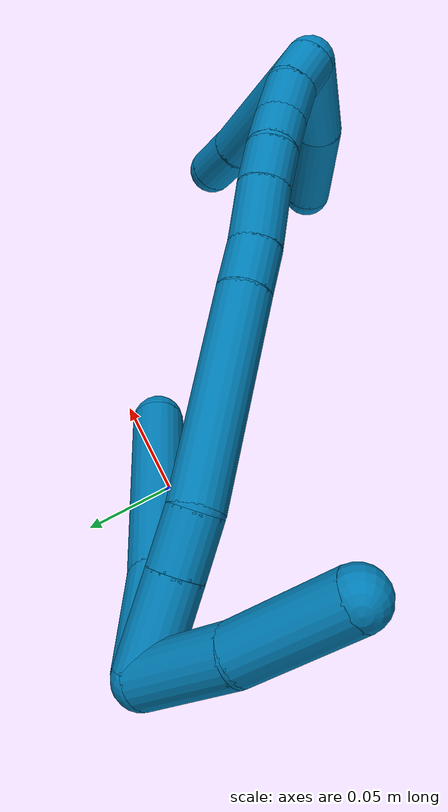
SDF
<sdf version="1.7">
 <world name="default">
  <model name="9">
   <static>0</static>
   <link name="9">
    <collision name="collision-cylinder-e_1_2_8">
     <pose>0.00841 -0.005478 -0.022238 2.90004 0.351927 1.94371</pose>
     <geometry><cylinder><radius>0.0125</radius><length>0.048796</length></cylinder></geometry>
     <surface>
      <friction><ode><mu>1.16</mu><mu2>1.16</mu2><slip1>0</slip1><slip2>0</slip2></ode></friction>
      <contact><ode><kp>1e+06</kp><kd>1</kd><max_vel>0</max_vel><min_depth>0.001</min_depth></ode></contact>
     </surface>
    </collision>
    <visual name="visual-cylinder-e_1_2_8">
     <pose>0.00841 -0.005478 -0.022238 2.90004 0.351927 1.94371</pose>
     <geometry><cylinder><radius>0.0125</radius><length>0.048796</length></cylinder></geometry>
     <material><ambient>0 0.490196 0.709804 1</ambient></material>
    </visual>
    <collision name="collision-cylinder-e_2_8_6">
     <pose>0.035945 -0.017242 -0.090901 3.00703 0.387564 2.4801</pose>
     <geometry><cylinder><radius>0.0125</radius><length>0.101204</length></cylinder></geometry>
     <surface>
      <friction><ode><mu>1.16</mu><mu2>1.16</mu2><slip1>0</slip1><slip2>0</slip2></ode></friction>
      <contact><ode><kp>1e+06</kp><kd>1</kd><max_vel>0</max_vel><min_depth>0.001</min_depth></ode></contact>
     </surface>
    </collision>
    <visual name="visual-cylinder-e_2_8_6">
     <pose>0.035945 -0.017242 -0.090901 3.00703 0.387564 2.4801</pose>
     <geometry><cylinder><radius>0.0125</radius><length>0.101204</length></cylinder></geometry>
     <material><ambient>0 0.490196 0.709804 1</ambient></material>
    </visual>
    <collision name="collision-cylinder-e_1_2_9">
     <pose>0.001696 -0.021197 0.009962 1.13147 0.072297 0.045918</pose>
     <geometry><cylinder><radius>0.0125</radius><length>0.046964</length></cylinder></geometry>
     <surface>
      <friction><ode><mu>1.16</mu><mu2>1.16</mu2><slip1>0</slip1><slip2>0</slip2></ode></friction>
      <contact><ode><kp>1e+06</kp><kd>1</kd><max_vel>0</max_vel><min_depth>0.001</min_depth></ode></contact>
     </surface>
    </collision>
    <visual name="visual-cylinder-e_1_2_9">
     <pose>0.001696 -0.021197 0.009962 1.13147 0.072297 0.045918</pose>
     <geometry><cylinder><radius>0.0125</radius><length>0.046964</length></cylinder></geometry>
     <material><ambient>0 0.490196 0.709804 1</ambient></material>
    </visual>
    <collision name="collision-cylinder-e_2_9_5">
     <pose>0.007242 -0.067546 0.027389 1.28226 0.145684 0.10881</pose>
     <geometry><cylinder><radius>0.0125</radius><length>0.053036</length></cylinder></geometry>
     <surface>
      <friction><ode><mu>1.16</mu><mu2>1.16</mu2><slip1>0</slip1><slip2>0</slip2></ode></friction>
      <contact><ode><kp>1e+06</kp><kd>1</kd><max_vel>0</max_vel><min_depth>0.001</min_depth></ode></contact>
     </surface>
    </collision>
    <visual name="visual-cylinder-e_2_9_5">
     <pose>0.007242 -0.067546 0.027389 1.28226 0.145684 0.10881</pose>
     <geometry><cylinder><radius>0.0125</radius><length>0.053036</length></cylinder></geometry>
     <material><ambient>0 0.490196 0.709804 1</ambient></material>
    </visual>
    <collision name="collision-cylinder-e_1_2_10">
     <pose>0.013115 -0.01361 -0.00737 2.06711 0.702971 1.10364</pose>
     <geometry><cylinder><radius>0.0125</radius><length>0.040575</length></cylinder></geometry>
     <surface>
      <friction><ode><mu>1.16</mu><mu2>1.16</mu2><slip1>0</slip1><slip2>0</slip2></ode></friction>
      <contact><ode><kp>1e+06</kp><kd>1</kd><max_vel>0</max_vel><min_depth>0.001</min_depth></ode></contact>
     </surface>
    </collision>
    <visual name="visual-cylinder-e_1_2_10">
     <pose>0.013115 -0.01361 -0.00737 2.06711 0.702971 1.10364</pose>
     <geometry><cylinder><radius>0.0125</radius><length>0.040575</length></cylinder></geometry>
     <material><ambient>0 0.490196 0.709804 1</ambient></material>
    </visual>
    <collision name="collision-cylinder-e_2_10_11">
     <pose>0.034635 -0.035871 -0.019617 2.08409 0.702372 1.12021</pose>
     <geometry><cylinder><radius>0.0125</radius><length>0.026018</length></cylinder></geometry>
     <surface>
      <friction><ode><mu>1.16</mu><mu2>1.16</mu2><slip1>0</slip1><slip2>0</slip2></ode></friction>
      <contact><ode><kp>1e+06</kp><kd>1</kd><max_vel>0</max_vel><min_depth>0.001</min_depth></ode></contact>
     </surface>
    </collision>
    <visual name="visual-cylinder-e_2_10_11">
     <pose>0.034635 -0.035871 -0.019617 2.08409 0.702372 1.12021</pose>
     <geometry><cylinder><radius>0.0125</radius><length>0.026018</length></cylinder></geometry>
     <material><ambient>0 0.490196 0.709804 1</ambient></material>
    </visual>
    <collision name="collision-cylinder-e_3_11_12">
     <pose>0.073308 -0.070751 -0.051607 2.37278 0.676166 1.43097</pose>
     <geometry><cylinder><radius>0.0125</radius><length>0.096734</length></cylinder></geometry>
     <surface>
      <friction><ode><mu>1.16</mu><mu2>1.16</mu2><slip1>0</slip1><slip2>0</slip2></ode></friction>
      <contact><ode><kp>1e+06</kp><kd>1</kd><max_vel>0</max_vel><min_depth>0.001</min_depth></ode></contact>
     </surface>
    </collision>
    <visual name="visual-cylinder-e_3_11_12">
     <pose>0.073308 -0.070751 -0.051607 2.37278 0.676166 1.43097</pose>
     <geometry><cylinder><radius>0.0125</radius><length>0.096734</length></cylinder></geometry>
     <material><ambient>0 0.490196 0.709804 1</ambient></material>
    </visual>
    <collision name="collision-cylinder-e_4_12_13">
     <pose>0.110175 -0.102972 -0.085709 2.43276 0.621957 1.43035</pose>
     <geometry><cylinder><radius>0.0125</radius><length>0.022651</length></cylinder></geometry>
     <surface>
      <friction><ode><mu>1.16</mu><mu2>1.16</mu2><slip1>0</slip1><slip2>0</slip2></ode></friction>
      <contact><ode><kp>1e+06</kp><kd>1</kd><max_vel>0</max_vel><min_depth>0.001</min_depth></ode></contact>
     </surface>
    </collision>
    <visual name="visual-cylinder-e_4_12_13">
     <pose>0.110175 -0.102972 -0.085709 2.43276 0.621957 1.43035</pose>
     <geometry><cylinder><radius>0.0125</radius><length>0.022651</length></cylinder></geometry>
     <material><ambient>0 0.490196 0.709804 1</ambient></material>
    </visual>
    <collision name="collision-cylinder-e_5_13_14">
     <pose>0.126649 -0.116316 -0.101925 2.46886 0.696876 1.60896</pose>
     <geometry><cylinder><radius>0.0125</radius><length>0.030774</length></cylinder></geometry>
     <surface>
      <friction><ode><mu>1.16</mu><mu2>1.16</mu2><slip1>0</slip1><slip2>0</slip2></ode></friction>
      <contact><ode><kp>1e+06</kp><kd>1</kd><max_vel>0</max_vel><min_depth>0.001</min_depth></ode></contact>
     </surface>
    </collision>
    <visual name="visual-cylinder-e_5_13_14">
     <pose>0.126649 -0.116316 -0.101925 2.46886 0.696876 1.60896</pose>
     <geometry><cylinder><radius>0.0125</radius><length>0.030774</length></cylinder></geometry>
     <material><ambient>0 0.490196 0.709804 1</ambient></material>
    </visual>
    <collision name="collision-cylinder-e_6_14_15">
     <pose>0.142933 -0.129228 -0.11774 2.44057 0.63938 1.47165</pose>
     <geometry><cylinder><radius>0.0125</radius><length>0.021478</length></cylinder></geometry>
     <surface>
      <friction><ode><mu>1.16</mu><mu2>1.16</mu2><slip1>0</slip1><slip2>0</slip2></ode></friction>
      <contact><ode><kp>1e+06</kp><kd>1</kd><max_vel>0</max_vel><min_depth>0.001</min_depth></ode></contact>
     </surface>
    </collision>
    <visual name="visual-cylinder-e_6_14_15">
     <pose>0.142933 -0.129228 -0.11774 2.44057 0.63938 1.47165</pose>
     <geometry><cylinder><radius>0.0125</radius><length>0.021478</length></cylinder></geometry>
     <material><ambient>0 0.490196 0.709804 1</ambient></material>
    </visual>
    <collision name="collision-cylinder-e_7_15_16">
     <pose>0.154131 -0.139559 -0.131767 2.57127 0.496499 1.4259</pose>
     <geometry><cylinder><radius>0.0125</radius><length>0.02011</length></cylinder></geometry>
     <surface>
      <friction><ode><mu>1.16</mu><mu2>1.16</mu2><slip1>0</slip1><slip2>0</slip2></ode></friction>
      <contact><ode><kp>1e+06</kp><kd>1</kd><max_vel>0</max_vel><min_depth>0.001</min_depth></ode></contact>
     </surface>
    </collision>
    <visual name="visual-cylinder-e_7_15_16">
     <pose>0.154131 -0.139559 -0.131767 2.57127 0.496499 1.4259</pose>
     <geometry><cylinder><radius>0.0125</radius><length>0.02011</length></cylinder></geometry>
     <material><ambient>0 0.490196 0.709804 1</ambient></material>
    </visual>
    <collision name="collision-cylinder-e_8_16_17">
     <pose>0.164709 -0.150484 -0.145923 2.39993 0.566168 1.28463</pose>
     <geometry><cylinder><radius>0.0125</radius><length>0.021582</length></cylinder></geometry>
     <surface>
      <friction><ode><mu>1.16</mu><mu2>1.16</mu2><slip1>0</slip1><slip2>0</slip2></ode></friction>
      <contact><ode><kp>1e+06</kp><kd>1</kd><max_vel>0</max_vel><min_depth>0.001</min_depth></ode></contact>
     </surface>
    </collision>
    <visual name="visual-cylinder-e_8_16_17">
     <pose>0.164709 -0.150484 -0.145923 2.39993 0.566168 1.28463</pose>
     <geometry><cylinder><radius>0.0125</radius><length>0.021582</length></cylinder></geometry>
     <material><ambient>0 0.490196 0.709804 1</ambient></material>
    </visual>
    <collision name="collision-cylinder-e_9_17_1">
     <pose>0.173874 -0.163608 -0.159024 2.3123 0.343128 0.750024</pose>
     <geometry><cylinder><radius>0.0125</radius><length>0.020078</length></cylinder></geometry>
     <surface>
      <friction><ode><mu>1.16</mu><mu2>1.16</mu2><slip1>0</slip1><slip2>0</slip2></ode></friction>
      <contact><ode><kp>1e+06</kp><kd>1</kd><max_vel>0</max_vel><min_depth>0.001</min_depth></ode></contact>
     </surface>
    </collision>
    <visual name="visual-cylinder-e_9_17_1">
     <pose>0.173874 -0.163608 -0.159024 2.3123 0.343128 0.750024</pose>
     <geometry><cylinder><radius>0.0125</radius><length>0.020078</length></cylinder></geometry>
     <material><ambient>0 0.490196 0.709804 1</ambient></material>
    </visual>
    <collision name="collision-cylinder-e_1_1_18">
     <pose>0.160519 -0.166261 -0.18464 -2.92069 -0.703905 2.55503</pose>
     <geometry><cylinder><radius>0.0125</radius><length>0.05171</length></cylinder></geometry>
     <surface>
      <friction><ode><mu>1.16</mu><mu2>1.16</mu2><slip1>0</slip1><slip2>0</slip2></ode></friction>
      <contact><ode><kp>1e+06</kp><kd>1</kd><max_vel>0</max_vel><min_depth>0.001</min_depth></ode></contact>
     </surface>
    </collision>
    <visual name="visual-cylinder-e_1_1_18">
     <pose>0.160519 -0.166261 -0.18464 -2.92069 -0.703905 2.55503</pose>
     <geometry><cylinder><radius>0.0125</radius><length>0.05171</length></cylinder></geometry>
     <material><ambient>0 0.490196 0.709804 1</ambient></material>
    </visual>
    <collision name="collision-cylinder-e_2_18_4">
     <pose>0.128264 -0.152077 -0.219514 -2.57894 -0.698199 1.79955</pose>
     <geometry><cylinder><radius>0.0125</radius><length>0.04829</length></cylinder></geometry>
     <surface>
      <friction><ode><mu>1.16</mu><mu2>1.16</mu2><slip1>0</slip1><slip2>0</slip2></ode></friction>
      <contact><ode><kp>1e+06</kp><kd>1</kd><max_vel>0</max_vel><min_depth>0.001</min_depth></ode></contact>
     </surface>
    </collision>
    <visual name="visual-cylinder-e_2_18_4">
     <pose>0.128264 -0.152077 -0.219514 -2.57894 -0.698199 1.79955</pose>
     <geometry><cylinder><radius>0.0125</radius><length>0.04829</length></cylinder></geometry>
     <material><ambient>0 0.490196 0.709804 1</ambient></material>
    </visual>
    <collision name="collision-cylinder-e_1_1_19">
     <pose>0.166116 -0.144165 -0.189443 -2.30903 -0.302265 0.663469</pose>
     <geometry><cylinder><radius>0.0125</radius><length>0.074818</length></cylinder></geometry>
     <surface>
      <friction><ode><mu>1.16</mu><mu2>1.16</mu2><slip1>0</slip1><slip2>0</slip2></ode></friction>
      <contact><ode><kp>1e+06</kp><kd>1</kd><max_vel>0</max_vel><min_depth>0.001</min_depth></ode></contact>
     </surface>
    </collision>
    <visual name="visual-cylinder-e_1_1_19">
     <pose>0.166116 -0.144165 -0.189443 -2.30903 -0.302265 0.663469</pose>
     <geometry><cylinder><radius>0.0125</radius><length>0.074818</length></cylinder></geometry>
     <material><ambient>0 0.490196 0.709804 1</ambient></material>
    </visual>
    <collision name="collision-cylinder-e_2_19_3">
     <pose>0.152241 -0.10902 -0.222128 -2.35167 -0.219279 0.516351</pose>
     <geometry><cylinder><radius>0.0125</radius><length>0.025182</length></cylinder></geometry>
     <surface>
      <friction><ode><mu>1.16</mu><mu2>1.16</mu2><slip1>0</slip1><slip2>0</slip2></ode></friction>
      <contact><ode><kp>1e+06</kp><kd>1</kd><max_vel>0</max_vel><min_depth>0.001</min_depth></ode></contact>
     </surface>
    </collision>
    <visual name="visual-cylinder-e_2_19_3">
     <pose>0.152241 -0.10902 -0.222128 -2.35167 -0.219279 0.516351</pose>
     <geometry><cylinder><radius>0.0125</radius><length>0.025182</length></cylinder></geometry>
     <material><ambient>0 0.490196 0.709804 1</ambient></material>
    </visual>
    <collision name="collision-sphere-3">
     <pose>0.149502 -0.100291 -0.230779 0 -0 0</pose>
     <geometry><sphere><radius>0.0125</radius></sphere></geometry>
     <surface>
      <friction><ode><mu>1.16</mu><mu2>1.16</mu2><slip1>0</slip1><slip2>0</slip2></ode></friction>
      <contact><ode><kp>1e+06</kp><kd>1</kd><max_vel>0</max_vel><min_depth>0.001</min_depth></ode></contact>
     </surface>
    </collision>
    <visual name="visual-sphere-3">
     <pose>0.149502 -0.100291 -0.230779 0 -0 0</pose>
     <geometry><sphere><radius>0.0125</radius></sphere></geometry>
     <material><ambient>0 0.490196 0.709804 1</ambient></material>
    </visual>
    <collision name="collision-sphere-19">
     <pose>0.15498 -0.117749 -0.213477 0 -0 0</pose>
     <geometry><sphere><radius>0.0125</radius></sphere></geometry>
     <surface>
      <friction><ode><mu>1.16</mu><mu2>1.16</mu2><slip1>0</slip1><slip2>0</slip2></ode></friction>
      <contact><ode><kp>1e+06</kp><kd>1</kd><max_vel>0</max_vel><min_depth>0.001</min_depth></ode></contact>
     </surface>
    </collision>
    <visual name="visual-sphere-19">
     <pose>0.15498 -0.117749 -0.213477 0 -0 0</pose>
     <geometry><sphere><radius>0.0125</radius></sphere></geometry>
     <material><ambient>0 0.490196 0.709804 1</ambient></material>
    </visual>
    <collision name="collision-sphere-10">
     <pose>0.026231 -0.02722 -0.01474 0 -0 0</pose>
     <geometry><sphere><radius>0.0125</radius></sphere></geometry>
     <surface>
      <friction><ode><mu>1.16</mu><mu2>1.16</mu2><slip1>0</slip1><slip2>0</slip2></ode></friction>
      <contact><ode><kp>1e+06</kp><kd>1</kd><max_vel>0</max_vel><min_depth>0.001</min_depth></ode></contact>
     </surface>
    </collision>
    <visual name="visual-sphere-10">
     <pose>0.026231 -0.02722 -0.01474 0 -0 0</pose>
     <geometry><sphere><radius>0.0125</radius></sphere></geometry>
     <material><ambient>0 0.490196 0.709804 1</ambient></material>
    </visual>
    <collision name="collision-sphere-5">
     <pose>0.011092 -0.092698 0.034855 0 -0 0</pose>
     <geometry><sphere><radius>0.0125</radius></sphere></geometry>
     <surface>
      <friction><ode><mu>1.16</mu><mu2>1.16</mu2><slip1>0</slip1><slip2>0</slip2></ode></friction>
      <contact><ode><kp>1e+06</kp><kd>1</kd><max_vel>0</max_vel><min_depth>0.001</min_depth></ode></contact>
     </surface>
    </collision>
    <visual name="visual-sphere-5">
     <pose>0.011092 -0.092698 0.034855 0 -0 0</pose>
     <geometry><sphere><radius>0.0125</radius></sphere></geometry>
     <material><ambient>0 0.490196 0.709804 1</ambient></material>
    </visual>
    <collision name="collision-sphere-6">
     <pose>0.055069 -0.023527 -0.137326 0 -0 0</pose>
     <geometry><sphere><radius>0.0125</radius></sphere></geometry>
     <surface>
      <friction><ode><mu>1.16</mu><mu2>1.16</mu2><slip1>0</slip1><slip2>0</slip2></ode></friction>
      <contact><ode><kp>1e+06</kp><kd>1</kd><max_vel>0</max_vel><min_depth>0.001</min_depth></ode></contact>
     </surface>
    </collision>
    <visual name="visual-sphere-6">
     <pose>0.055069 -0.023527 -0.137326 0 -0 0</pose>
     <geometry><sphere><radius>0.0125</radius></sphere></geometry>
     <material><ambient>0 0.490196 0.709804 1</ambient></material>
    </visual>
    <collision name="collision-sphere-9">
     <pose>0.003392 -0.042393 0.019923 0 -0 0</pose>
     <geometry><sphere><radius>0.0125</radius></sphere></geometry>
     <surface>
      <friction><ode><mu>1.16</mu><mu2>1.16</mu2><slip1>0</slip1><slip2>0</slip2></ode></friction>
      <contact><ode><kp>1e+06</kp><kd>1</kd><max_vel>0</max_vel><min_depth>0.001</min_depth></ode></contact>
     </surface>
    </collision>
    <visual name="visual-sphere-9">
     <pose>0.003392 -0.042393 0.019923 0 -0 0</pose>
     <geometry><sphere><radius>0.0125</radius></sphere></geometry>
     <material><ambient>0 0.490196 0.709804 1</ambient></material>
    </visual>
    <collision name="collision-sphere-2">
     <geometry><sphere><radius>0.0125</radius></sphere></geometry>
     <surface>
      <friction><ode><mu>1.16</mu><mu2>1.16</mu2><slip1>0</slip1><slip2>0</slip2></ode></friction>
      <contact><ode><kp>1e+06</kp><kd>1</kd><max_vel>0</max_vel><min_depth>0.001</min_depth></ode></contact>
     </surface>
    </collision>
    <visual name="visual-sphere-2">
     <geometry><sphere><radius>0.0125</radius></sphere></geometry>
     <material><ambient>0 0.490196 0.709804 1</ambient></material>
    </visual>
    <collision name="collision-sphere-8">
     <pose>0.01682 -0.010957 -0.044475 0 -0 0</pose>
     <geometry><sphere><radius>0.0125</radius></sphere></geometry>
     <surface>
      <friction><ode><mu>1.16</mu><mu2>1.16</mu2><slip1>0</slip1><slip2>0</slip2></ode></friction>
      <contact><ode><kp>1e+06</kp><kd>1</kd><max_vel>0</max_vel><min_depth>0.001</min_depth></ode></contact>
     </surface>
    </collision>
    <visual name="visual-sphere-8">
     <pose>0.01682 -0.010957 -0.044475 0 -0 0</pose>
     <geometry><sphere><radius>0.0125</radius></sphere></geometry>
     <material><ambient>0 0.490196 0.709804 1</ambient></material>
    </visual>
    <collision name="collision-sphere-11">
     <pose>0.043039 -0.044521 -0.024493 0 -0 0</pose>
     <geometry><sphere><radius>0.0125</radius></sphere></geometry>
     <surface>
      <friction><ode><mu>1.16</mu><mu2>1.16</mu2><slip1>0</slip1><slip2>0</slip2></ode></friction>
      <contact><ode><kp>1e+06</kp><kd>1</kd><max_vel>0</max_vel><min_depth>0.001</min_depth></ode></contact>
     </surface>
    </collision>
    <visual name="visual-sphere-11">
     <pose>0.043039 -0.044521 -0.024493 0 -0 0</pose>
     <geometry><sphere><radius>0.0125</radius></sphere></geometry>
     <material><ambient>0 0.490196 0.709804 1</ambient></material>
    </visual>
    <collision name="collision-sphere-12">
     <pose>0.103576 -0.09698 -0.078722 0 -0 0</pose>
     <geometry><sphere><radius>0.0125</radius></sphere></geometry>
     <surface>
      <friction><ode><mu>1.16</mu><mu2>1.16</mu2><slip1>0</slip1><slip2>0</slip2></ode></friction>
      <contact><ode><kp>1e+06</kp><kd>1</kd><max_vel>0</max_vel><min_depth>0.001</min_depth></ode></contact>
     </surface>
    </collision>
    <visual name="visual-sphere-12">
     <pose>0.103576 -0.09698 -0.078722 0 -0 0</pose>
     <geometry><sphere><radius>0.0125</radius></sphere></geometry>
     <material><ambient>0 0.490196 0.709804 1</ambient></material>
    </visual>
    <collision name="collision-sphere-13">
     <pose>0.116773 -0.108964 -0.092696 0 -0 0</pose>
     <geometry><sphere><radius>0.0125</radius></sphere></geometry>
     <surface>
      <friction><ode><mu>1.16</mu><mu2>1.16</mu2><slip1>0</slip1><slip2>0</slip2></ode></friction>
      <contact><ode><kp>1e+06</kp><kd>1</kd><max_vel>0</max_vel><min_depth>0.001</min_depth></ode></contact>
     </surface>
    </collision>
    <visual name="visual-sphere-13">
     <pose>0.116773 -0.108964 -0.092696 0 -0 0</pose>
     <geometry><sphere><radius>0.0125</radius></sphere></geometry>
     <material><ambient>0 0.490196 0.709804 1</ambient></material>
    </visual>
    <collision name="collision-sphere-14">
     <pose>0.136525 -0.123669 -0.111154 0 -0 0</pose>
     <geometry><sphere><radius>0.0125</radius></sphere></geometry>
     <surface>
      <friction><ode><mu>1.16</mu><mu2>1.16</mu2><slip1>0</slip1><slip2>0</slip2></ode></friction>
      <contact><ode><kp>1e+06</kp><kd>1</kd><max_vel>0</max_vel><min_depth>0.001</min_depth></ode></contact>
     </surface>
    </collision>
    <visual name="visual-sphere-14">
     <pose>0.136525 -0.123669 -0.111154 0 -0 0</pose>
     <geometry><sphere><radius>0.0125</radius></sphere></geometry>
     <material><ambient>0 0.490196 0.709804 1</ambient></material>
    </visual>
    <collision name="collision-sphere-15">
     <pose>0.149341 -0.134786 -0.124325 0 -0 0</pose>
     <geometry><sphere><radius>0.0125</radius></sphere></geometry>
     <surface>
      <friction><ode><mu>1.16</mu><mu2>1.16</mu2><slip1>0</slip1><slip2>0</slip2></ode></friction>
      <contact><ode><kp>1e+06</kp><kd>1</kd><max_vel>0</max_vel><min_depth>0.001</min_depth></ode></contact>
     </surface>
    </collision>
    <visual name="visual-sphere-15">
     <pose>0.149341 -0.134786 -0.124325 0 -0 0</pose>
     <geometry><sphere><radius>0.0125</radius></sphere></geometry>
     <material><ambient>0 0.490196 0.709804 1</ambient></material>
    </visual>
    <collision name="collision-sphere-16">
     <pose>0.15892 -0.144332 -0.139208 0 -0 0</pose>
     <geometry><sphere><radius>0.0125</radius></sphere></geometry>
     <surface>
      <friction><ode><mu>1.16</mu><mu2>1.16</mu2><slip1>0</slip1><slip2>0</slip2></ode></friction>
      <contact><ode><kp>1e+06</kp><kd>1</kd><max_vel>0</max_vel><min_depth>0.001</min_depth></ode></contact>
     </surface>
    </collision>
    <visual name="visual-sphere-16">
     <pose>0.15892 -0.144332 -0.139208 0 -0 0</pose>
     <geometry><sphere><radius>0.0125</radius></sphere></geometry>
     <material><ambient>0 0.490196 0.709804 1</ambient></material>
    </visual>
    <collision name="collision-sphere-17">
     <pose>0.170497 -0.156636 -0.152639 0 -0 0</pose>
     <geometry><sphere><radius>0.0125</radius></sphere></geometry>
     <surface>
      <friction><ode><mu>1.16</mu><mu2>1.16</mu2><slip1>0</slip1><slip2>0</slip2></ode></friction>
      <contact><ode><kp>1e+06</kp><kd>1</kd><max_vel>0</max_vel><min_depth>0.001</min_depth></ode></contact>
     </surface>
    </collision>
    <visual name="visual-sphere-17">
     <pose>0.170497 -0.156636 -0.152639 0 -0 0</pose>
     <geometry><sphere><radius>0.0125</radius></sphere></geometry>
     <material><ambient>0 0.490196 0.709804 1</ambient></material>
    </visual>
    <collision name="collision-sphere-1">
     <pose>0.177252 -0.17058 -0.165409 0 -0 0</pose>
     <geometry><sphere><radius>0.0125</radius></sphere></geometry>
     <surface>
      <friction><ode><mu>1.16</mu><mu2>1.16</mu2><slip1>0</slip1><slip2>0</slip2></ode></friction>
      <contact><ode><kp>1e+06</kp><kd>1</kd><max_vel>0</max_vel><min_depth>0.001</min_depth></ode></contact>
     </surface>
    </collision>
    <visual name="visual-sphere-1">
     <pose>0.177252 -0.17058 -0.165409 0 -0 0</pose>
     <geometry><sphere><radius>0.0125</radius></sphere></geometry>
     <material><ambient>0 0.490196 0.709804 1</ambient></material>
    </visual>
    <collision name="collision-sphere-18">
     <pose>0.143785 -0.161943 -0.20387 0 -0 0</pose>
     <geometry><sphere><radius>0.0125</radius></sphere></geometry>
     <surface>
      <friction><ode><mu>1.16</mu><mu2>1.16</mu2><slip1>0</slip1><slip2>0</slip2></ode></friction>
      <contact><ode><kp>1e+06</kp><kd>1</kd><max_vel>0</max_vel><min_depth>0.001</min_depth></ode></contact>
     </surface>
    </collision>
    <visual name="visual-sphere-18">
     <pose>0.143785 -0.161943 -0.20387 0 -0 0</pose>
     <geometry><sphere><radius>0.0125</radius></sphere></geometry>
     <material><ambient>0 0.490196 0.709804 1</ambient></material>
    </visual>
    <collision name="collision-sphere-4">
     <pose>0.112742 -0.142211 -0.235158 0 -0 0</pose>
     <geometry><sphere><radius>0.0125</radius></sphere></geometry>
     <surface>
      <friction><ode><mu>1.16</mu><mu2>1.16</mu2><slip1>0</slip1><slip2>0</slip2></ode></friction>
      <contact><ode><kp>1e+06</kp><kd>1</kd><max_vel>0</max_vel><min_depth>0.001</min_depth></ode></contact>
     </surface>
    </collision>
    <visual name="visual-sphere-4">
     <pose>0.112742 -0.142211 -0.235158 0 -0 0</pose>
     <geometry><sphere><radius>0.0125</radius></sphere></geometry>
     <material><ambient>0 0.490196 0.709804 1</ambient></material>
    </visual>
    <inertial>
     <pose>0.084535 -0.083225 -0.09424 0 -0 0</pose>
     <mass>0.75</mass>
     <inertia><ixx>0.000178</ixx><ixy>0</ixy><ixz>0</ixz><iyy>0.000284</iyy><iyz>0</iyz><izz>-5e-05</izz></inertia>
    </inertial>
   </link>
   <pose>-0.059083 0.032239 0.175711 -0.187535 -0.292963 0.030449</pose>
  </model>
 </world>
</sdf>
